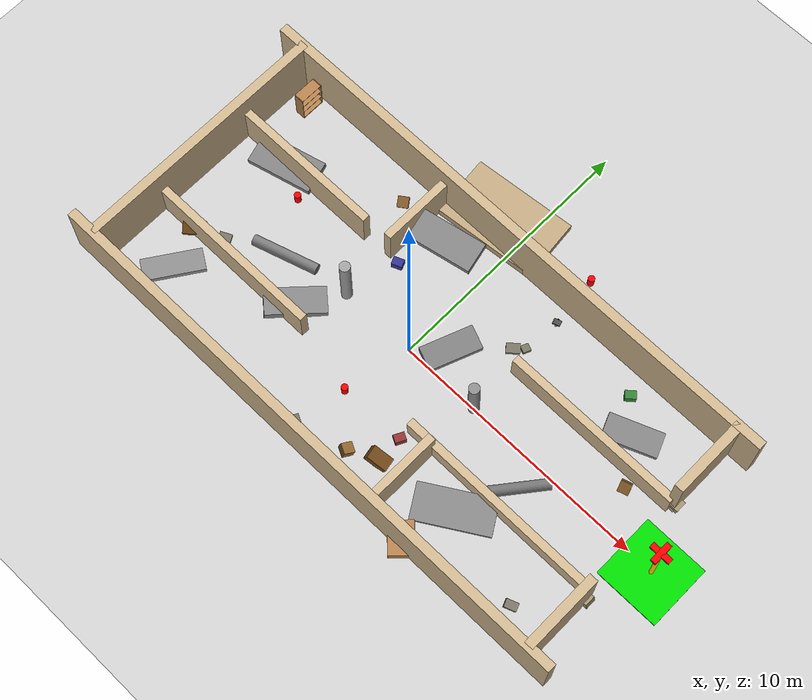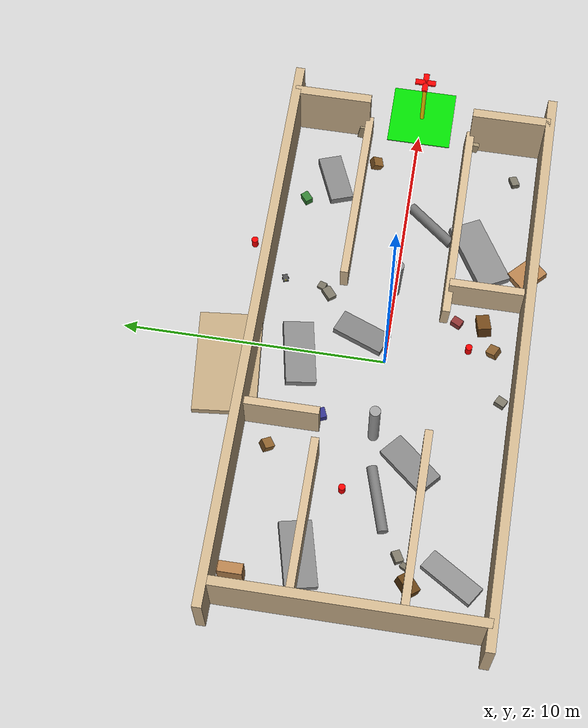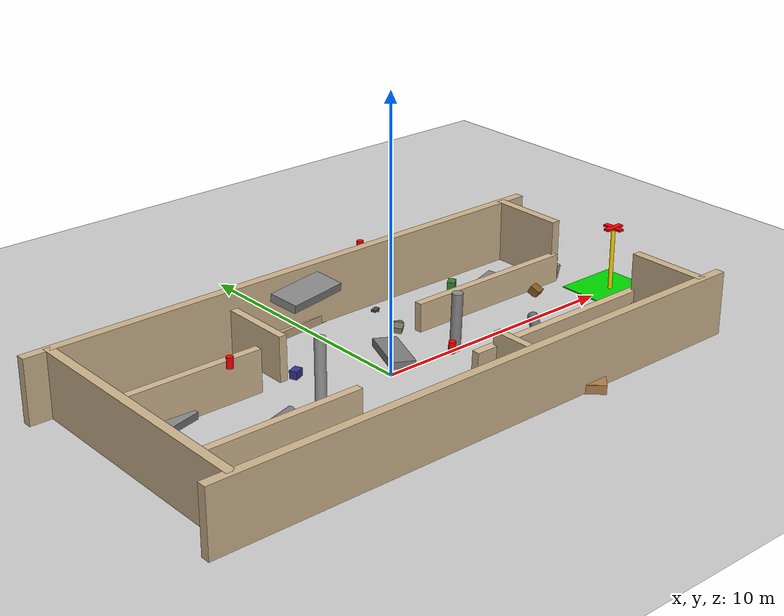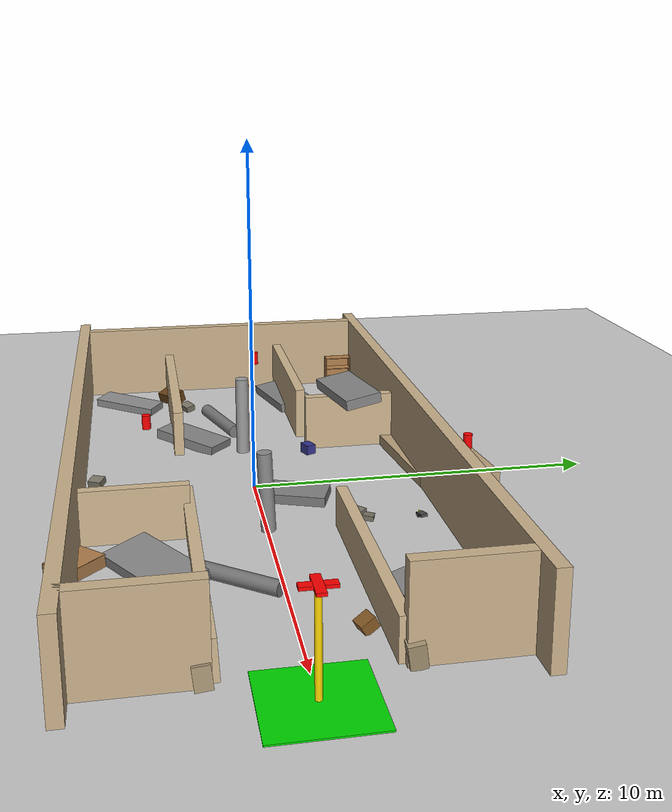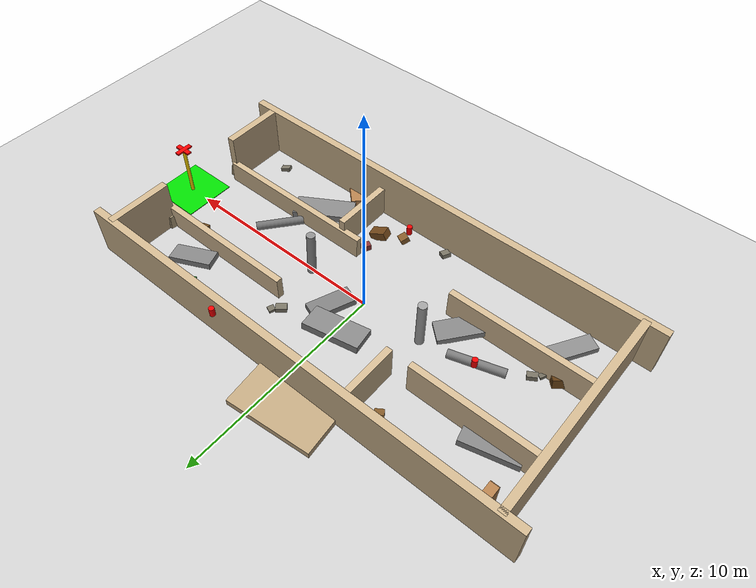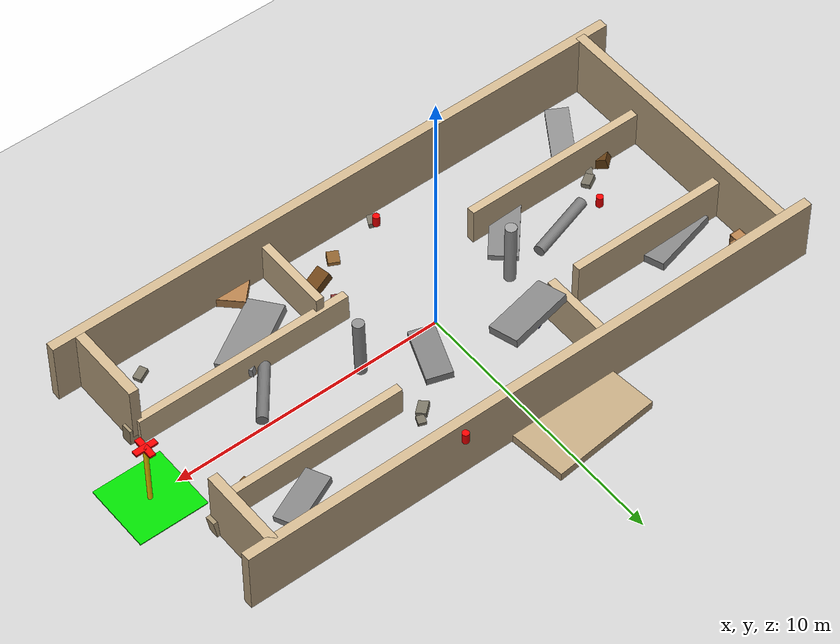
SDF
<sdf version="1.7">
 <world name="school_rescue_world">
  <physics type="ode">
   <real_time_update_rate>1000</real_time_update_rate>
   <max_step_size>0.001</max_step_size>
   <real_time_factor>1</real_time_factor>
  </physics>
  <scene><ambient>0.6 0.55 0.5 1</ambient><background>0.55 0.58 0.62 1</background><shadows>1</shadows></scene>
  <light name="sun" type="directional">
   <pose>0 0 10 0 -0 0</pose>
   <diffuse>0.8 0.8 0.8 1</diffuse>
   <specular>0.2 0.2 0.2 1</specular>
   <attenuation>
    <range>1000</range>
    <constant>0.9</constant>
    <linear>0.01</linear>
    <quadratic>0.001</quadratic>
   </attenuation>
   <direction>-0.5 0.1 -0.9</direction>
   <spot><inner_angle>0</inner_angle><outer_angle>0</outer_angle><falloff>0</falloff></spot>
  </light>
  <model name="ground_plane">
   <static>1</static>
   <link name="link">
    <collision name="collision">
     <geometry><plane><normal>0 0 1</normal><size>100 100</size></plane></geometry>
     <surface>
      <contact><collide_bitmask>65535</collide_bitmask></contact>
      <friction><ode><mu>100</mu><mu2>50</mu2></ode></friction>
     </surface>
    </collision>
    <visual name="visual">
     <cast_shadows>0</cast_shadows>
     <geometry><plane><normal>0 0 1</normal><size>100 100</size></plane></geometry>
     <material>
      <script><uri>file://media/materials/scripts/gazebo.material</uri><name>Gazebo/Grey</name></script>
     </material>
    </visual>
   </link>
  </model>
  <model name="wall_north">
   <static>1</static>
   <pose>0 4.95114 1.2 0 -0 0</pose>
   <link name="link">
    <collision name="col"><geometry><box><size>22 0.35 2.4</size></box></geometry></collision>
    <visual name="vis">
     <geometry><box><size>22 0.35 2.4</size></box></geometry>
     <material><ambient>0.8 0.7 0.55 1</ambient><diffuse>0.8 0.7 0.55 1</diffuse></material>
    </visual>
   </link>
  </model>
  <model name="wall_north_fallen">
   <static>1</static>
   <pose>-1 5.8 0.12 1.5708 -0 0.1</pose>
   <link name="link">
    <collision name="col"><geometry><box><size>4 0.35 2.4</size></box></geometry></collision>
    <visual name="vis">
     <geometry><box><size>4 0.35 2.4</size></box></geometry>
     <material><ambient>0.75 0.65 0.5 1</ambient><diffuse>0.75 0.65 0.5 1</diffuse></material>
    </visual>
   </link>
  </model>
  <model name="wall_south">
   <static>1</static>
   <pose>0 -5 1.2 0 -0 0</pose>
   <link name="link">
    <collision name="col"><geometry><box><size>22 0.35 2.4</size></box></geometry></collision>
    <visual name="vis">
     <geometry><box><size>22 0.35 2.4</size></box></geometry>
     <material><ambient>0.8 0.7 0.55 1</ambient><diffuse>0.8 0.7 0.55 1</diffuse></material>
    </visual>
   </link>
  </model>
  <model name="wall_west">
   <static>1</static>
   <pose>-10 0 1.2 0 -0 0</pose>
   <link name="link">
    <collision name="col"><geometry><box><size>0.35 10 2.4</size></box></geometry></collision>
    <visual name="vis">
     <geometry><box><size>0.35 10 2.4</size></box></geometry>
     <material><ambient>0.8 0.7 0.55 1</ambient><diffuse>0.8 0.7 0.55 1</diffuse></material>
    </visual>
   </link>
  </model>
  <model name="wall_east_north">
   <static>1</static>
   <pose>10 3.5 1.2 0 -0 0</pose>
   <link name="link">
    <collision name="col"><geometry><box><size>0.35 3 2.4</size></box></geometry></collision>
    <visual name="vis">
     <geometry><box><size>0.35 3 2.4</size></box></geometry>
     <material><ambient>0.8 0.7 0.55 1</ambient><diffuse>0.8 0.7 0.55 1</diffuse></material>
    </visual>
   </link>
  </model>
  <model name="wall_east_south">
   <static>1</static>
   <pose>10 -3.5 1.2 0 -0 0</pose>
   <link name="link">
    <collision name="col"><geometry><box><size>0.35 3 2.4</size></box></geometry></collision>
    <visual name="vis">
     <geometry><box><size>0.35 3 2.4</size></box></geometry>
     <material><ambient>0.8 0.7 0.55 1</ambient><diffuse>0.8 0.7 0.55 1</diffuse></material>
    </visual>
   </link>
  </model>
  <model name="gap_rubble_n">
   <static>1</static>
   <pose>10 2.2 0.3 0.15 0.1 0</pose>
   <link name="link">
    <collision name="col"><geometry><box><size>0.6 0.4 0.6</size></box></geometry></collision>
    <visual name="vis">
     <geometry><box><size>0.6 0.4 0.6</size></box></geometry>
     <material><ambient>0.65 0.58 0.45 1</ambient><diffuse>0.65 0.58 0.45 1</diffuse></material>
    </visual>
   </link>
  </model>
  <model name="gap_rubble_s">
   <static>1</static>
   <pose>10 -2.2 0.28 0.1 -0.08 -0</pose>
   <link name="link">
    <collision name="col"><geometry><box><size>0.6 0.4 0.55</size></box></geometry></collision>
    <visual name="vis">
     <geometry><box><size>0.6 0.4 0.55</size></box></geometry>
     <material><ambient>0.65 0.58 0.45 1</ambient><diffuse>0.65 0.58 0.45 1</diffuse></material>
    </visual>
   </link>
  </model>
  <model name="corr_n_west">
   <static>1</static>
   <pose>-7 2 0.8 0 -0 0</pose>
   <link name="link">
    <collision name="col"><geometry><box><size>6 0.3 1.6</size></box></geometry></collision>
    <visual name="vis">
     <geometry><box><size>6 0.3 1.6</size></box></geometry>
     <material><ambient>0.82 0.72 0.57 1</ambient><diffuse>0.82 0.72 0.57 1</diffuse></material>
    </visual>
   </link>
  </model>
  <model name="corr_n_east">
   <static>1</static>
   <pose>6.5 2 0.55 0 -0 0</pose>
   <link name="link">
    <collision name="col"><geometry><box><size>7 0.3 1.1</size></box></geometry></collision>
    <visual name="vis">
     <geometry><box><size>7 0.3 1.1</size></box></geometry>
     <material><ambient>0.82 0.72 0.57 1</ambient><diffuse>0.82 0.72 0.57 1</diffuse></material>
    </visual>
   </link>
  </model>
  <model name="corr_s_west">
   <static>1</static>
   <pose>-6.5 -2 0.7 0 -0 0</pose>
   <link name="link">
    <collision name="col"><geometry><box><size>7 0.3 1.4</size></box></geometry></collision>
    <visual name="vis">
     <geometry><box><size>7 0.3 1.4</size></box></geometry>
     <material><ambient>0.82 0.72 0.57 1</ambient><diffuse>0.82 0.72 0.57 1</diffuse></material>
    </visual>
   </link>
  </model>
  <model name="corr_s_east">
   <static>1</static>
   <pose>6 -2 0.5 0.05 -0 0</pose>
   <link name="link">
    <collision name="col"><geometry><box><size>8 0.3 1</size></box></geometry></collision>
    <visual name="vis">
     <geometry><box><size>8 0.3 1</size></box></geometry>
     <material><ambient>0.82 0.72 0.57 1</ambient><diffuse>0.82 0.72 0.57 1</diffuse></material>
    </visual>
   </link>
  </model>
  <model name="class_div_w_n">
   <static>1</static>
   <pose>-3 3.5 0.85 0 -0 0</pose>
   <link name="link">
    <collision name="col"><geometry><box><size>0.3 3 1.7</size></box></geometry></collision>
    <visual name="vis">
     <geometry><box><size>0.3 3 1.7</size></box></geometry>
     <material><ambient>0.82 0.72 0.57 1</ambient><diffuse>0.82 0.72 0.57 1</diffuse></material>
    </visual>
   </link>
  </model>
  <model name="class_div_e_s">
   <static>1</static>
   <pose>3 -3.5 0.75 0 -0 0</pose>
   <link name="link">
    <collision name="col"><geometry><box><size>0.3 3 1.5</size></box></geometry></collision>
    <visual name="vis">
     <geometry><box><size>0.3 3 1.5</size></box></geometry>
     <material><ambient>0.82 0.72 0.57 1</ambient><diffuse>0.82 0.72 0.57 1</diffuse></material>
    </visual>
   </link>
  </model>
  <model name="col_1">
   <static>1</static>
   <pose>-3 0 1.2 0 -0 0</pose>
   <link name="link">
    <collision name="col">
     <geometry><cylinder><radius>0.2</radius><length>2.4</length></cylinder></geometry>
    </collision>
    <visual name="vis">
     <geometry><cylinder><radius>0.2</radius><length>2.4</length></cylinder></geometry>
     <material><ambient>0.62 0.62 0.62 1</ambient><diffuse>0.62 0.62 0.62 1</diffuse></material>
    </visual>
   </link>
  </model>
  <model name="col_2">
   <static>1</static>
   <pose>3 0 1.1 0.04 -0 0</pose>
   <link name="link">
    <collision name="col">
     <geometry><cylinder><radius>0.2</radius><length>2.2</length></cylinder></geometry>
    </collision>
    <visual name="vis">
     <geometry><cylinder><radius>0.2</radius><length>2.2</length></cylinder></geometry>
     <material><ambient>0.55 0.55 0.55 1</ambient><diffuse>0.55 0.55 0.55 1</diffuse></material>
    </visual>
   </link>
  </model>
  <model name="col_fallen_1">
   <static>1</static>
   <pose>-5.5 -0.5 0.2 3.14159 1.57079 -2.84159</pose>
   <link name="link">
    <collision name="col">
     <geometry><cylinder><radius>0.2</radius><length>2.5</length></cylinder></geometry>
    </collision>
    <visual name="vis">
     <geometry><cylinder><radius>0.2</radius><length>2.5</length></cylinder></geometry>
     <material><ambient>0.48 0.48 0.48 1</ambient><diffuse>0.48 0.48 0.48 1</diffuse></material>
    </visual>
   </link>
  </model>
  <model name="col_fallen_2">
   <static>1</static>
   <pose>6 -1 0.2 -3.14159 1.57079 -2.24159</pose>
   <link name="link">
    <collision name="col">
     <geometry><cylinder><radius>0.2</radius><length>2.2</length></cylinder></geometry>
    </collision>
    <visual name="vis">
     <geometry><cylinder><radius>0.2</radius><length>2.2</length></cylinder></geometry>
     <material><ambient>0.45 0.45 0.45 1</ambient><diffuse>0.45 0.45 0.45 1</diffuse></material>
    </visual>
   </link>
  </model>
  <model name="slab_1">
   <static>1</static>
   <pose>-8 2 0.18 0.12 -0 0.25</pose>
   <link name="link">
    <collision name="col"><geometry><box><size>2.5 1.2 0.3</size></box></geometry></collision>
    <visual name="vis">
     <geometry><box><size>2.5 1.2 0.3</size></box></geometry>
     <material><ambient>0.52 0.52 0.52 1</ambient><diffuse>0.52 0.52 0.52 1</diffuse></material>
    </visual>
   </link>
  </model>
  <model name="slab_2">
   <static>1</static>
   <pose>-4 -1.5 0.18 0 0.1 0.85</pose>
   <link name="link">
    <collision name="col"><geometry><box><size>2.2 1 0.3</size></box></geometry></collision>
    <visual name="vis">
     <geometry><box><size>2.2 1 0.3</size></box></geometry>
     <material><ambient>0.52 0.52 0.52 1</ambient><diffuse>0.52 0.52 0.52 1</diffuse></material>
    </visual>
   </link>
  </model>
  <model name="slab_3">
   <static>1</static>
   <pose>1 1 0.15 0.08 -0 1.2</pose>
   <link name="link">
    <collision name="col"><geometry><box><size>2 0.9 0.28</size></box></geometry></collision>
    <visual name="vis">
     <geometry><box><size>2 0.9 0.28</size></box></geometry>
     <material><ambient>0.5 0.5 0.5 1</ambient><diffuse>0.5 0.5 0.5 1</diffuse></material>
    </visual>
   </link>
  </model>
  <model name="slab_4">
   <static>1</static>
   <pose>5 -3 0.2 0.15 -0 0.55</pose>
   <link name="link">
    <collision name="col"><geometry><box><size>2.8 1.3 0.3</size></box></geometry></collision>
    <visual name="vis">
     <geometry><box><size>2.8 1.3 0.3</size></box></geometry>
     <material><ambient>0.54 0.54 0.54 1</ambient><diffuse>0.54 0.54 0.54 1</diffuse></material>
    </visual>
   </link>
  </model>
  <model name="slab_5">
   <static>1</static>
   <pose>7.5 3 0.17 0.1 0.06 0.4</pose>
   <link name="link">
    <collision name="col"><geometry><box><size>2 0.9 0.28</size></box></geometry></collision>
    <visual name="vis">
     <geometry><box><size>2 0.9 0.28</size></box></geometry>
     <material><ambient>0.52 0.52 0.52 1</ambient><diffuse>0.52 0.52 0.52 1</diffuse></material>
    </visual>
   </link>
  </model>
  <model name="slab_6">
   <static>1</static>
   <pose>-1.19868 3.02547 2.41017 0.14 -0 0.2</pose>
   <link name="link">
    <collision name="col"><geometry><box><size>2.4 1.1 0.3</size></box></geometry></collision>
    <visual name="vis">
     <geometry><box><size>2.4 1.1 0.3</size></box></geometry>
     <material><ambient>0.53 0.53 0.53 1</ambient><diffuse>0.53 0.53 0.53 1</diffuse></material>
    </visual>
   </link>
  </model>
  <model name="slab_7">
   <static>1</static>
   <pose>-8 -3.5 0.18 0.07 0.05 1</pose>
   <link name="link">
    <collision name="col"><geometry><box><size>2.2 0.8 0.25</size></box></geometry></collision>
    <visual name="vis">
     <geometry><box><size>2.2 0.8 0.25</size></box></geometry>
     <material><ambient>0.55 0.55 0.55 1</ambient><diffuse>0.55 0.55 0.55 1</diffuse></material>
    </visual>
   </link>
  </model>
  <model name="desk_fallen_2">
   <static>1</static>
   <pose>2 -3.5 0.2 0 0.4 0.2</pose>
   <link name="link">
    <collision name="col"><geometry><box><size>0.8 0.5 0.4</size></box></geometry></collision>
    <visual name="vis">
     <geometry><box><size>0.8 0.5 0.4</size></box></geometry>
     <material><ambient>0.45 0.28 0.1 1</ambient><diffuse>0.45 0.28 0.1 1</diffuse></material>
    </visual>
   </link>
  </model>
  <model name="desk_fallen_3">
   <static>1</static>
   <pose>-8.5 -2 0.2 0.3 -0 0.7</pose>
   <link name="link">
    <collision name="col"><geometry><box><size>0.8 0.5 0.4</size></box></geometry></collision>
    <visual name="vis">
     <geometry><box><size>0.8 0.5 0.4</size></box></geometry>
     <material><ambient>0.4 0.25 0.08 1</ambient><diffuse>0.4 0.25 0.08 1</diffuse></material>
    </visual>
   </link>
  </model>
  <model name="chair_1">
   <static>1</static>
   <pose>-4 3.8 0.15 0.4 -0 0.6</pose>
   <link name="link">
    <collision name="col"><geometry><box><size>0.4 0.4 0.3</size></box></geometry></collision>
    <visual name="vis">
     <geometry><box><size>0.4 0.4 0.3</size></box></geometry>
     <material><ambient>0.55 0.38 0.18 1</ambient><diffuse>0.55 0.38 0.18 1</diffuse></material>
    </visual>
   </link>
  </model>
  <model name="chair_2">
   <static>1</static>
   <pose>1 -4 0.15 0 0.35 1.1</pose>
   <link name="link">
    <collision name="col"><geometry><box><size>0.4 0.4 0.3</size></box></geometry></collision>
    <visual name="vis">
     <geometry><box><size>0.4 0.4 0.3</size></box></geometry>
     <material><ambient>0.55 0.38 0.18 1</ambient><diffuse>0.55 0.38 0.18 1</diffuse></material>
    </visual>
   </link>
  </model>
  <model name="chair_3">
   <static>1</static>
   <pose>8.5 1.5 0.15 0.5 -0 0.3</pose>
   <link name="link">
    <collision name="col"><geometry><box><size>0.4 0.4 0.3</size></box></geometry></collision>
    <visual name="vis">
     <geometry><box><size>0.4 0.4 0.3</size></box></geometry>
     <material><ambient>0.52 0.35 0.15 1</ambient><diffuse>0.52 0.35 0.15 1</diffuse></material>
    </visual>
   </link>
  </model>
  <model name="shelf_1">
   <static>1</static>
   <link name="link">
    <inertial><mass>1</mass></inertial>
    <collision name="back">
     <pose>0 0.005 0.6 0 -0 0</pose>
     <geometry><box><size>0.9 0.01 1.2</size></box></geometry>
    </collision>
    <visual name="visual1">
     <pose>0 0.005 0.6 0 -0 0</pose>
     <geometry><box><size>0.9 0.01 1.2</size></box></geometry>
     <material>
      <script><uri>file://media/materials/scripts/gazebo.material</uri><name>Gazebo/Wood</name></script>
     </material>
    </visual>
    <collision name="left_side">
     <pose>0.45 -0.195 0.6 0 -0 0</pose>
     <geometry><box><size>0.02 0.4 1.2</size></box></geometry>
    </collision>
    <visual name="visual2">
     <pose>0.45 -0.195 0.6 0 -0 0</pose>
     <geometry><box><size>0.02 0.4 1.2</size></box></geometry>
     <material>
      <script><uri>file://media/materials/scripts/gazebo.material</uri><name>Gazebo/Wood</name></script>
     </material>
    </visual>
    <collision name="right_side">
     <pose>-0.45 -0.195 0.6 0 -0 0</pose>
     <geometry><box><size>0.02 0.4 1.2</size></box></geometry>
    </collision>
    <visual name="visual3">
     <pose>-0.45 -0.195 0.6 0 -0 0</pose>
     <geometry><box><size>0.02 0.4 1.2</size></box></geometry>
     <material>
      <script><uri>file://media/materials/scripts/gazebo.material</uri><name>Gazebo/Wood</name></script>
     </material>
    </visual>
    <collision name="bottom">
     <pose>0 -0.195 0.03 0 -0 0</pose>
     <geometry><box><size>0.88 0.4 0.06</size></box></geometry>
    </collision>
    <visual name="visual4">
     <pose>0 -0.195 0.03 0 -0 0</pose>
     <geometry><box><size>0.88 0.4 0.06</size></box></geometry>
     <material>
      <script><uri>file://media/materials/scripts/gazebo.material</uri><name>Gazebo/Wood</name></script>
     </material>
    </visual>
    <collision name="top">
     <pose>0 -0.195 1.19 0 -0 0</pose>
     <geometry><box><size>0.88 0.4 0.02</size></box></geometry>
    </collision>
    <visual name="visual5">
     <pose>0 -0.195 1.19 0 -0 0</pose>
     <geometry><box><size>0.88 0.4 0.02</size></box></geometry>
     <material>
      <script><uri>file://media/materials/scripts/gazebo.material</uri><name>Gazebo/Wood</name></script>
     </material>
    </visual>
    <collision name="low_shelf">
     <pose>0 -0.195 0.43 0 -0 0</pose>
     <geometry><box><size>0.88 0.4 0.02</size></box></geometry>
    </collision>
    <visual name="visual6">
     <pose>0 -0.195 0.43 0 -0 0</pose>
     <geometry><box><size>0.88 0.4 0.02</size></box></geometry>
     <material>
      <script><uri>file://media/materials/scripts/gazebo.material</uri><name>Gazebo/Wood</name></script>
     </material>
    </visual>
    <collision name="high_shelf">
     <pose>0 -0.195 0.8 0 -0 0</pose>
     <geometry><box><size>0.88 0.4 0.02</size></box></geometry>
    </collision>
    <visual name="visual7">
     <pose>0 -0.195 0.8 0 -0 0</pose>
     <geometry><box><size>0.88 0.4 0.02</size></box></geometry>
     <material>
      <script><uri>file://media/materials/scripts/gazebo.material</uri><name>Gazebo/Wood</name></script>
     </material>
    </visual>
   </link>
   <pose>-9.3 4.2 0 0 -0 1.5708</pose>
  </model>
  <model name="shelf_2_fallen">
   <static>1</static>
   <link name="link">
    <inertial><mass>1</mass></inertial>
    <collision name="back">
     <pose>0 0.005 0.6 0 -0 0</pose>
     <geometry><box><size>0.9 0.01 1.2</size></box></geometry>
    </collision>
    <visual name="visual1">
     <pose>0 0.005 0.6 0 -0 0</pose>
     <geometry><box><size>0.9 0.01 1.2</size></box></geometry>
     <material>
      <script><uri>file://media/materials/scripts/gazebo.material</uri><name>Gazebo/Wood</name></script>
     </material>
    </visual>
    <collision name="left_side">
     <pose>0.45 -0.195 0.6 0 -0 0</pose>
     <geometry><box><size>0.02 0.4 1.2</size></box></geometry>
    </collision>
    <visual name="visual2">
     <pose>0.45 -0.195 0.6 0 -0 0</pose>
     <geometry><box><size>0.02 0.4 1.2</size></box></geometry>
     <material>
      <script><uri>file://media/materials/scripts/gazebo.material</uri><name>Gazebo/Wood</name></script>
     </material>
    </visual>
    <collision name="right_side">
     <pose>-0.45 -0.195 0.6 0 -0 0</pose>
     <geometry><box><size>0.02 0.4 1.2</size></box></geometry>
    </collision>
    <visual name="visual3">
     <pose>-0.45 -0.195 0.6 0 -0 0</pose>
     <geometry><box><size>0.02 0.4 1.2</size></box></geometry>
     <material>
      <script><uri>file://media/materials/scripts/gazebo.material</uri><name>Gazebo/Wood</name></script>
     </material>
    </visual>
    <collision name="bottom">
     <pose>0 -0.195 0.03 0 -0 0</pose>
     <geometry><box><size>0.88 0.4 0.06</size></box></geometry>
    </collision>
    <visual name="visual4">
     <pose>0 -0.195 0.03 0 -0 0</pose>
     <geometry><box><size>0.88 0.4 0.06</size></box></geometry>
     <material>
      <script><uri>file://media/materials/scripts/gazebo.material</uri><name>Gazebo/Wood</name></script>
     </material>
    </visual>
    <collision name="top">
     <pose>0 -0.195 1.19 0 -0 0</pose>
     <geometry><box><size>0.88 0.4 0.02</size></box></geometry>
    </collision>
    <visual name="visual5">
     <pose>0 -0.195 1.19 0 -0 0</pose>
     <geometry><box><size>0.88 0.4 0.02</size></box></geometry>
     <material>
      <script><uri>file://media/materials/scripts/gazebo.material</uri><name>Gazebo/Wood</name></script>
     </material>
    </visual>
    <collision name="low_shelf">
     <pose>0 -0.195 0.43 0 -0 0</pose>
     <geometry><box><size>0.88 0.4 0.02</size></box></geometry>
    </collision>
    <visual name="visual6">
     <pose>0 -0.195 0.43 0 -0 0</pose>
     <geometry><box><size>0.88 0.4 0.02</size></box></geometry>
     <material>
      <script><uri>file://media/materials/scripts/gazebo.material</uri><name>Gazebo/Wood</name></script>
     </material>
    </visual>
    <collision name="high_shelf">
     <pose>0 -0.195 0.8 0 -0 0</pose>
     <geometry><box><size>0.88 0.4 0.02</size></box></geometry>
    </collision>
    <visual name="visual7">
     <pose>0 -0.195 0.8 0 -0 0</pose>
     <geometry><box><size>0.88 0.4 0.02</size></box></geometry>
     <material>
      <script><uri>file://media/materials/scripts/gazebo.material</uri><name>Gazebo/Wood</name></script>
     </material>
    </visual>
   </link>
   <pose>4 -4.5 0.3 1.5708 0 0.8</pose>
  </model>
  <model name="bag_1">
   <static>1</static>
   <pose>-2.5 2 0.15 0 -0 0.4</pose>
   <link name="link">
    <collision name="col"><geometry><box><size>0.4 0.3 0.3</size></box></geometry></collision>
    <visual name="vis">
     <geometry><box><size>0.4 0.3 0.3</size></box></geometry>
     <material><ambient>0.2 0.2 0.55 1</ambient><diffuse>0.2 0.2 0.55 1</diffuse></material>
    </visual>
   </link>
  </model>
  <model name="bag_2">
   <static>1</static>
   <pose>2 -2.5 0.15 0 -0 1.1</pose>
   <link name="link">
    <collision name="col"><geometry><box><size>0.4 0.3 0.3</size></box></geometry></collision>
    <visual name="vis">
     <geometry><box><size>0.4 0.3 0.3</size></box></geometry>
     <material><ambient>0.55 0.2 0.2 1</ambient><diffuse>0.55 0.2 0.2 1</diffuse></material>
    </visual>
   </link>
  </model>
  <model name="bag_3">
   <static>1</static>
   <pose>6.5 4 0.15 0 -0 0.7</pose>
   <link name="link">
    <collision name="col"><geometry><box><size>0.4 0.3 0.3</size></box></geometry></collision>
    <visual name="vis">
     <geometry><box><size>0.4 0.3 0.3</size></box></geometry>
     <material><ambient>0.2 0.5 0.2 1</ambient><diffuse>0.2 0.5 0.2 1</diffuse></material>
    </visual>
   </link>
  </model>
  <model name="rubble_1a">
   <static>1</static>
   <pose>-7.5 -1.5 0.1 0.2 0.1 0.5</pose>
   <link name="link">
    <collision name="col"><geometry><box><size>0.45 0.32 0.2</size></box></geometry></collision>
    <visual name="vis">
     <geometry><box><size>0.45 0.32 0.2</size></box></geometry>
     <material><ambient>0.48 0.46 0.4 1</ambient><diffuse>0.48 0.46 0.4 1</diffuse></material>
    </visual>
   </link>
  </model>
  <model name="rubble_1b">
   <static>1</static>
   <pose>-7.8 -1.8 0.07 0.1 0.3 1</pose>
   <link name="link">
    <collision name="col"><geometry><box><size>0.28 0.22 0.14</size></box></geometry></collision>
    <visual name="vis">
     <geometry><box><size>0.28 0.22 0.14</size></box></geometry>
     <material><ambient>0.46 0.44 0.38 1</ambient><diffuse>0.46 0.44 0.38 1</diffuse></material>
    </visual>
   </link>
  </model>
  <model name="rubble_2a">
   <static>1</static>
   <pose>2.5 2.5 0.1 0.15 -0 0.7</pose>
   <link name="link">
    <collision name="col"><geometry><box><size>0.5 0.35 0.2</size></box></geometry></collision>
    <visual name="vis">
     <geometry><box><size>0.5 0.35 0.2</size></box></geometry>
     <material><ambient>0.48 0.46 0.4 1</ambient><diffuse>0.48 0.46 0.4 1</diffuse></material>
    </visual>
   </link>
  </model>
  <model name="rubble_2b">
   <static>1</static>
   <pose>2.8 2.8 0.07 0 0.1 1.2</pose>
   <link name="link">
    <collision name="col"><geometry><box><size>0.3 0.28 0.14</size></box></geometry></collision>
    <visual name="vis">
     <geometry><box><size>0.3 0.28 0.14</size></box></geometry>
     <material><ambient>0.46 0.44 0.38 1</ambient><diffuse>0.46 0.44 0.38 1</diffuse></material>
    </visual>
   </link>
  </model>
  <model name="rubble_3a">
   <static>1</static>
   <pose>8.5 -4 0.1 0.1 0.2 0.4</pose>
   <link name="link">
    <collision name="col"><geometry><box><size>0.45 0.3 0.18</size></box></geometry></collision>
    <visual name="vis">
     <geometry><box><size>0.45 0.3 0.18</size></box></geometry>
     <material><ambient>0.48 0.46 0.4 1</ambient><diffuse>0.48 0.46 0.4 1</diffuse></material>
    </visual>
   </link>
  </model>
  <model name="rubble_4a">
   <static>1</static>
   <pose>-1 -4.5 0.1 0.2 -0 1.1</pose>
   <link name="link">
    <collision name="col"><geometry><box><size>0.4 0.35 0.2</size></box></geometry></collision>
    <visual name="vis">
     <geometry><box><size>0.4 0.35 0.2</size></box></geometry>
     <material><ambient>0.48 0.46 0.4 1</ambient><diffuse>0.48 0.46 0.4 1</diffuse></material>
    </visual>
   </link>
  </model>
  <model name="marker_1">
   <static>1</static>
   <pose>-6 0.743343 2.2 0 -0 0</pose>
   <link name="link">
    <visual name="vis">
     <geometry><cylinder><radius>0.12</radius><length>0.4</length></cylinder></geometry>
     <material><ambient>1 0 0 1</ambient><diffuse>1 0 0 1</diffuse></material>
    </visual>
   </link>
  </model>
  <model name="marker_2">
   <static>1</static>
   <pose>0 -3 2.2 0 -0 0</pose>
   <link name="link">
    <visual name="vis">
     <geometry><cylinder><radius>0.12</radius><length>0.4</length></cylinder></geometry>
     <material><ambient>1 0 0 1</ambient><diffuse>1 0 0 1</diffuse></material>
    </visual>
   </link>
  </model>
  <model name="marker_3">
   <static>1</static>
   <pose>3.16357 5.41228 2.2 0 -0 0</pose>
   <link name="link">
    <visual name="vis">
     <geometry><cylinder><radius>0.12</radius><length>0.4</length></cylinder></geometry>
     <material><ambient>1 0 0 1</ambient><diffuse>1 0 0 1</diffuse></material>
    </visual>
   </link>
  </model>
  <model name="landing_pad">
   <static>1</static>
   <pose>11 0 0.02 0 -0 0</pose>
   <link name="link">
    <collision name="col"><geometry><box><size>2.5 2.5 0.04</size></box></geometry></collision>
    <visual name="vis">
     <geometry><box><size>2.5 2.5 0.04</size></box></geometry>
     <material><ambient>0 0.85 0 1</ambient><diffuse>0 0.85 0 1</diffuse></material>
    </visual>
   </link>
  </model>
  <model name="beacon_pole">
   <static>1</static>
   <pose>11 0 1.2 0 -0 0</pose>
   <link name="link">
    <visual name="vis">
     <geometry><cylinder><radius>0.08</radius><length>2.4</length></cylinder></geometry>
     <material><ambient>1 0.85 0 1</ambient><diffuse>1 0.85 0 1</diffuse></material>
    </visual>
   </link>
  </model>
  <model name="cross_h">
   <static>1</static>
   <pose>11 0 2.5 0 -0 0</pose>
   <link name="link">
    <visual name="vis">
     <geometry><box><size>0.8 0.22 0.08</size></box></geometry>
     <material><ambient>1 0 0 1</ambient><diffuse>1 0 0 1</diffuse></material>
    </visual>
   </link>
  </model>
  <model name="cross_v">
   <static>1</static>
   <pose>11 0 2.5 0 -0 0</pose>
   <link name="link">
    <visual name="vis">
     <geometry><box><size>0.22 0.8 0.08</size></box></geometry>
     <material><ambient>1 0 0 1</ambient><diffuse>1 0 0 1</diffuse></material>
    </visual>
   </link>
  </model>
  <gravity>0 0 -9.81</gravity>
  <magnetic_field>6e-06 2.3e-05 -4.2e-05</magnetic_field>
  <atmosphere type="adiabatic"/>
  <spherical_coordinates>
   <surface_model>EARTH_WGS84</surface_model>
   <latitude_deg>0</latitude_deg>
   <longitude_deg>0</longitude_deg>
   <elevation>0</elevation>
   <heading_deg>0</heading_deg>
  </spherical_coordinates>
  <model name="com760group30Bot">
   <link name="base_footprint">
    <inertial>
     <pose>0.005714 0 0.050476 0 -0 0</pose>
     <mass>2.1</mass>
     <inertia>
      <ixx>0.0168645</ixx>
      <ixy>0</ixy>
      <ixz>-0.000114286</ixz>
      <iyy>0.021036</iyy>
      <iyz>0</iyz>
      <izz>0.0329764</izz>
     </inertia>
    </inertial>
    <collision name="base_footprint_fixed_joint_lump__base_link_collision">
     <pose>0 0 0.05 0 -0 0</pose>
     <geometry><box><size>0.28 0.2 0.08</size></box></geometry>
    </collision>
    <collision name="base_footprint_fixed_joint_lump__caster_wheel_collision_1">
     <pose>0.12 0 0.01 0 -0 0</pose>
     <geometry><sphere><radius>0.02</radius></sphere></geometry>
     <surface><friction><ode><mu>0</mu><mu2>0</mu2></ode></friction></surface>
    </collision>
    <visual name="base_footprint_fixed_joint_lump__base_link_visual">
     <pose>0 0 0.05 0 -0 0</pose>
     <geometry><box><size>0.28 0.2 0.08</size></box></geometry>
     <material>
      <script><name>Gazebo/DarkGrey</name><uri>file://media/materials/scripts/gazebo.material</uri></script>
     </material>
    </visual>
    <visual name="base_footprint_fixed_joint_lump__caster_wheel_visual_1">
     <pose>0.12 0 0.01 0 -0 0</pose>
     <geometry><sphere><radius>0.02</radius></sphere></geometry>
     <material>
      <script><name>Gazebo/DarkGrey</name><uri>file://media/materials/scripts/gazebo.material</uri></script>
     </material>
    </visual>
    <visual name="base_footprint_fixed_joint_lump__laser_link_visual_2">
     <pose>0.12 0 0.11 0 -0 0</pose>
     <geometry><box><size>0.04 0.04 0.03</size></box></geometry>
     <material>
      <script><name>Gazebo/Yellow</name><uri>file://media/materials/scripts/gazebo.material</uri></script>
     </material>
    </visual>
    <sensor name="mine_laser" type="ray">
     <visualize>1</visualize>
     <update_rate>20</update_rate>
     <ray>
      <scan>
       <horizontal>
        <samples>360</samples>
        <resolution>1</resolution>
        <min_angle>-3.14159</min_angle>
        <max_angle>3.14159</max_angle>
       </horizontal>
       <vertical><samples>1</samples><min_angle>0</min_angle><max_angle>0</max_angle></vertical>
      </scan>
      <range><min>0.1</min><max>10</max><resolution>0.01</resolution></range>
      <noise><type>gaussian</type><mean>0</mean><stddev>0.01</stddev></noise>
     </ray>
     <plugin name="laser_controller" filename="libgazebo_ros_laser.so">
      <robotNamespace>/com760group30Bot</robotNamespace>
      <topicName>/com760group30Bot/laser/scan</topicName>
      <frameName>laser_link</frameName>
     </plugin>
     <pose>0.12 0 0.11 0 -0 0</pose>
    </sensor>
   </link>
   <joint name="left_wheel_joint" type="revolute">
    <pose relative_to="base_footprint">0 0.12 0.025 -1.5707 0 0</pose>
    <parent>base_footprint</parent>
    <child>left_wheel</child>
    <axis>
     <xyz>0 0 1</xyz>
     <limit><lower>-1e+16</lower><upper>1e+16</upper></limit>
     <dynamics><spring_reference>0</spring_reference><spring_stiffness>0</spring_stiffness></dynamics>
    </axis>
   </joint>
   <link name="left_wheel">
    <pose relative_to="left_wheel_joint">0 0 0 0 -0 0</pose>
    <inertial>
     <mass>0.3</mass>
     <inertia>
      <ixx>0.000152</ixx>
      <ixy>0</ixy>
      <ixz>0</ixz>
      <iyy>0.000152</iyy>
      <iyz>0</iyz>
      <izz>0.000304</izz>
     </inertia>
    </inertial>
    <collision name="left_wheel_collision">
     <geometry><cylinder><length>0.03</length><radius>0.045</radius></cylinder></geometry>
     <surface><friction><ode><mu>1</mu><mu2>1</mu2></ode></friction></surface>
    </collision>
    <visual name="left_wheel_visual">
     <geometry><cylinder><length>0.03</length><radius>0.045</radius></cylinder></geometry>
     <material>
      <script><name>Gazebo/Black</name><uri>file://media/materials/scripts/gazebo.material</uri></script>
     </material>
    </visual>
   </link>
   <joint name="right_wheel_joint" type="revolute">
    <pose relative_to="base_footprint">0 -0.12 0.025 -1.5707 0 0</pose>
    <parent>base_footprint</parent>
    <child>right_wheel</child>
    <axis>
     <xyz>0 0 1</xyz>
     <limit><lower>-1e+16</lower><upper>1e+16</upper></limit>
     <dynamics><spring_reference>0</spring_reference><spring_stiffness>0</spring_stiffness></dynamics>
    </axis>
   </joint>
   <link name="right_wheel">
    <pose relative_to="right_wheel_joint">0 0 0 0 -0 0</pose>
    <inertial>
     <mass>0.3</mass>
     <inertia>
      <ixx>0.000152</ixx>
      <ixy>0</ixy>
      <ixz>0</ixz>
      <iyy>0.000152</iyy>
      <iyz>0</iyz>
      <izz>0.000304</izz>
     </inertia>
    </inertial>
    <collision name="right_wheel_collision">
     <geometry><cylinder><length>0.03</length><radius>0.045</radius></cylinder></geometry>
     <surface><friction><ode><mu>1</mu><mu2>1</mu2></ode></friction></surface>
    </collision>
    <visual name="right_wheel_visual">
     <geometry><cylinder><length>0.03</length><radius>0.045</radius></cylinder></geometry>
     <material>
      <script><name>Gazebo/Black</name><uri>file://media/materials/scripts/gazebo.material</uri></script>
     </material>
    </visual>
   </link>
   <plugin name="differential_drive_controller" filename="libgazebo_ros_diff_drive.so">
    <robotNamespace>/com760group30Bot</robotNamespace>
    <leftJoint>left_wheel_joint</leftJoint>
    <rightJoint>right_wheel_joint</rightJoint>
    <wheelSeparation>0.24</wheelSeparation>
    <wheelDiameter>0.09</wheelDiameter>
    <wheelTorque>10</wheelTorque>
    <wheelAcceleration>1.5</wheelAcceleration>
    <commandTopic>/com760group30Bot/cmd_vel</commandTopic>
    <odometryTopic>/com760group30Bot/odom</odometryTopic>
    <odometryFrame>odom</odometryFrame>
    <robotBaseFrame>base_footprint</robotBaseFrame>
    <publishWheelTF>1</publishWheelTF>
    <publishOdom>1</publishOdom>
    <updateRate>30</updateRate>
   </plugin>
   <frame name="caster_joint" attached_to="base_link"><pose>0.12 0 -0.04 0 -0 0</pose></frame>
   <frame name="caster_wheel" attached_to="caster_joint"/>
   <frame name="laser_joint" attached_to="base_link"><pose>0.12 0 0.06 0 -0 0</pose></frame>
   <frame name="laser_link" attached_to="laser_joint"/>
   <frame name="base_joint" attached_to="base_footprint"><pose>0 0 0.05 0 -0 0</pose></frame>
   <frame name="base_link" attached_to="base_joint"/>
   <pose>2.9231 4.26226 0.020088 -6e-06 0.08372 -2.84521</pose>
  </model>
 </world>
</sdf>
